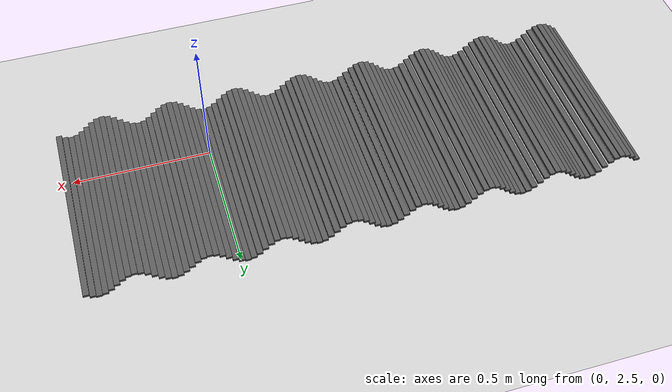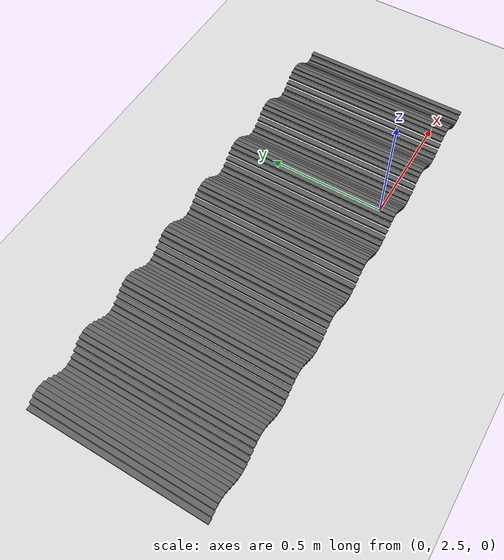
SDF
<sdf version="1.7">
 <world name="default">
  <physics name="default_physics" default="0" type="ode">
   <max_step_size>0.001</max_step_size>
   <real_time_factor>1</real_time_factor>
   <real_time_update_rate>1000</real_time_update_rate>
  </physics>
  <scene><ambient>0.4 0.4 0.4 1</ambient><background>0.7 0.7 0.7 1</background><shadows>1</shadows></scene>
  <include><uri>model://sun</uri></include>
  <include><uri>model://ground_plane</uri></include>
  <model name="wave_strip_240mm_70mm">
   <static>true</static>
   <link name="wave_link">
    <collision name="c_000">
     <pose>-1.3900 2.7500 0.1620 0 0 0</pose>
     <geometry><box><size>0.0200 0.7000 0.0080</size></box></geometry>
     <surface><friction><ode><mu>100</mu><mu2>50</mu2></ode></friction></surface>
    </collision>
    <visual name="v_000">
     <pose>-1.3900 2.7500 0.1620 0 0 0</pose>
     <geometry><box><size>0.0200 0.7000 0.0080</size></box></geometry>
     <material>
      <ambient>0.20 0.20 0.20 1</ambient>
      <diffuse>0.35 0.35 0.35 1</diffuse>
      <specular>0.02 0.02 0.02 1</specular>
     </material>
    </visual>
    <collision name="c_001">
     <pose>-1.3700 2.7500 0.1795 0 0 0</pose>
     <geometry><box><size>0.0200 0.7000 0.0080</size></box></geometry>
     <surface><friction><ode><mu>100</mu><mu2>50</mu2></ode></friction></surface>
    </collision>
    <visual name="v_001">
     <pose>-1.3700 2.7500 0.1795 0 0 0</pose>
     <geometry><box><size>0.0200 0.7000 0.0080</size></box></geometry>
     <material>
      <ambient>0.20 0.20 0.20 1</ambient>
      <diffuse>0.35 0.35 0.35 1</diffuse>
      <specular>0.02 0.02 0.02 1</specular>
     </material>
    </visual>
    <collision name="c_002">
     <pose>-1.3500 2.7500 0.1923 0 0 0</pose>
     <geometry><box><size>0.0200 0.7000 0.0080</size></box></geometry>
     <surface><friction><ode><mu>100</mu><mu2>50</mu2></ode></friction></surface>
    </collision>
    <visual name="v_002">
     <pose>-1.3500 2.7500 0.1923 0 0 0</pose>
     <geometry><box><size>0.0200 0.7000 0.0080</size></box></geometry>
     <material>
      <ambient>0.20 0.20 0.20 1</ambient>
      <diffuse>0.35 0.35 0.35 1</diffuse>
      <specular>0.02 0.02 0.02 1</specular>
     </material>
    </visual>
    <collision name="c_003">
     <pose>-1.3300 2.7500 0.1970 0 0 0</pose>
     <geometry><box><size>0.0200 0.7000 0.0080</size></box></geometry>
     <surface><friction><ode><mu>100</mu><mu2>50</mu2></ode></friction></surface>
    </collision>
    <visual name="v_003">
     <pose>-1.3300 2.7500 0.1970 0 0 0</pose>
     <geometry><box><size>0.0200 0.7000 0.0080</size></box></geometry>
     <material>
      <ambient>0.20 0.20 0.20 1</ambient>
      <diffuse>0.35 0.35 0.35 1</diffuse>
      <specular>0.02 0.02 0.02 1</specular>
     </material>
    </visual>
    <collision name="c_004">
     <pose>-1.3100 2.7500 0.1923 0 0 0</pose>
     <geometry><box><size>0.0200 0.7000 0.0080</size></box></geometry>
     <surface><friction><ode><mu>100</mu><mu2>50</mu2></ode></friction></surface>
    </collision>
    <visual name="v_004">
     <pose>-1.3100 2.7500 0.1923 0 0 0</pose>
     <geometry><box><size>0.0200 0.7000 0.0080</size></box></geometry>
     <material>
      <ambient>0.20 0.20 0.20 1</ambient>
      <diffuse>0.35 0.35 0.35 1</diffuse>
      <specular>0.02 0.02 0.02 1</specular>
     </material>
    </visual>
    <collision name="c_005">
     <pose>-1.2900 2.7500 0.1795 0 0 0</pose>
     <geometry><box><size>0.0200 0.7000 0.0080</size></box></geometry>
     <surface><friction><ode><mu>100</mu><mu2>50</mu2></ode></friction></surface>
    </collision>
    <visual name="v_005">
     <pose>-1.2900 2.7500 0.1795 0 0 0</pose>
     <geometry><box><size>0.0200 0.7000 0.0080</size></box></geometry>
     <material>
      <ambient>0.20 0.20 0.20 1</ambient>
      <diffuse>0.35 0.35 0.35 1</diffuse>
      <specular>0.02 0.02 0.02 1</specular>
     </material>
    </visual>
    <collision name="c_006">
     <pose>-1.2700 2.7500 0.1620 0 0 0</pose>
     <geometry><box><size>0.0200 0.7000 0.0080</size></box></geometry>
     <surface><friction><ode><mu>100</mu><mu2>50</mu2></ode></friction></surface>
    </collision>
    <visual name="v_006">
     <pose>-1.2700 2.7500 0.1620 0 0 0</pose>
     <geometry><box><size>0.0200 0.7000 0.0080</size></box></geometry>
     <material>
      <ambient>0.20 0.20 0.20 1</ambient>
      <diffuse>0.35 0.35 0.35 1</diffuse>
      <specular>0.02 0.02 0.02 1</specular>
     </material>
    </visual>
    <collision name="c_007">
     <pose>-1.2500 2.7500 0.1445 0 0 0</pose>
     <geometry><box><size>0.0200 0.7000 0.0080</size></box></geometry>
     <surface><friction><ode><mu>100</mu><mu2>50</mu2></ode></friction></surface>
    </collision>
    <visual name="v_007">
     <pose>-1.2500 2.7500 0.1445 0 0 0</pose>
     <geometry><box><size>0.0200 0.7000 0.0080</size></box></geometry>
     <material>
      <ambient>0.20 0.20 0.20 1</ambient>
      <diffuse>0.35 0.35 0.35 1</diffuse>
      <specular>0.02 0.02 0.02 1</specular>
     </material>
    </visual>
    <collision name="c_008">
     <pose>-1.2300 2.7500 0.1317 0 0 0</pose>
     <geometry><box><size>0.0200 0.7000 0.0080</size></box></geometry>
     <surface><friction><ode><mu>100</mu><mu2>50</mu2></ode></friction></surface>
    </collision>
    <visual name="v_008">
     <pose>-1.2300 2.7500 0.1317 0 0 0</pose>
     <geometry><box><size>0.0200 0.7000 0.0080</size></box></geometry>
     <material>
      <ambient>0.20 0.20 0.20 1</ambient>
      <diffuse>0.35 0.35 0.35 1</diffuse>
      <specular>0.02 0.02 0.02 1</specular>
     </material>
    </visual>
    <collision name="c_009">
     <pose>-1.2100 2.7500 0.1270 0 0 0</pose>
     <geometry><box><size>0.0200 0.7000 0.0080</size></box></geometry>
     <surface><friction><ode><mu>100</mu><mu2>50</mu2></ode></friction></surface>
    </collision>
    <visual name="v_009">
     <pose>-1.2100 2.7500 0.1270 0 0 0</pose>
     <geometry><box><size>0.0200 0.7000 0.0080</size></box></geometry>
     <material>
      <ambient>0.20 0.20 0.20 1</ambient>
      <diffuse>0.35 0.35 0.35 1</diffuse>
      <specular>0.02 0.02 0.02 1</specular>
     </material>
    </visual>
    <collision name="c_010">
     <pose>-1.1900 2.7500 0.1317 0 0 0</pose>
     <geometry><box><size>0.0200 0.7000 0.0080</size></box></geometry>
     <surface><friction><ode><mu>100</mu><mu2>50</mu2></ode></friction></surface>
    </collision>
    <visual name="v_010">
     <pose>-1.1900 2.7500 0.1317 0 0 0</pose>
     <geometry><box><size>0.0200 0.7000 0.0080</size></box></geometry>
     <material>
      <ambient>0.20 0.20 0.20 1</ambient>
      <diffuse>0.35 0.35 0.35 1</diffuse>
      <specular>0.02 0.02 0.02 1</specular>
     </material>
    </visual>
    <collision name="c_011">
     <pose>-1.1700 2.7500 0.1445 0 0 0</pose>
     <geometry><box><size>0.0200 0.7000 0.0080</size></box></geometry>
     <surface><friction><ode><mu>100</mu><mu2>50</mu2></ode></friction></surface>
    </collision>
    <visual name="v_011">
     <pose>-1.1700 2.7500 0.1445 0 0 0</pose>
     <geometry><box><size>0.0200 0.7000 0.0080</size></box></geometry>
     <material>
      <ambient>0.20 0.20 0.20 1</ambient>
      <diffuse>0.35 0.35 0.35 1</diffuse>
      <specular>0.02 0.02 0.02 1</specular>
     </material>
    </visual>
    <collision name="c_012">
     <pose>-1.1500 2.7500 0.1620 0 0 0</pose>
     <geometry><box><size>0.0200 0.7000 0.0080</size></box></geometry>
     <surface><friction><ode><mu>100</mu><mu2>50</mu2></ode></friction></surface>
    </collision>
    <visual name="v_012">
     <pose>-1.1500 2.7500 0.1620 0 0 0</pose>
     <geometry><box><size>0.0200 0.7000 0.0080</size></box></geometry>
     <material>
      <ambient>0.20 0.20 0.20 1</ambient>
      <diffuse>0.35 0.35 0.35 1</diffuse>
      <specular>0.02 0.02 0.02 1</specular>
     </material>
    </visual>
    <collision name="c_013">
     <pose>-1.1300 2.7500 0.1795 0 0 0</pose>
     <geometry><box><size>0.0200 0.7000 0.0080</size></box></geometry>
     <surface><friction><ode><mu>100</mu><mu2>50</mu2></ode></friction></surface>
    </collision>
    <visual name="v_013">
     <pose>-1.1300 2.7500 0.1795 0 0 0</pose>
     <geometry><box><size>0.0200 0.7000 0.0080</size></box></geometry>
     <material>
      <ambient>0.20 0.20 0.20 1</ambient>
      <diffuse>0.35 0.35 0.35 1</diffuse>
      <specular>0.02 0.02 0.02 1</specular>
     </material>
    </visual>
    <collision name="c_014">
     <pose>-1.1100 2.7500 0.1923 0 0 0</pose>
     <geometry><box><size>0.0200 0.7000 0.0080</size></box></geometry>
     <surface><friction><ode><mu>100</mu><mu2>50</mu2></ode></friction></surface>
    </collision>
    <visual name="v_014">
     <pose>-1.1100 2.7500 0.1923 0 0 0</pose>
     <geometry><box><size>0.0200 0.7000 0.0080</size></box></geometry>
     <material>
      <ambient>0.20 0.20 0.20 1</ambient>
      <diffuse>0.35 0.35 0.35 1</diffuse>
      <specular>0.02 0.02 0.02 1</specular>
     </material>
    </visual>
    <collision name="c_015">
     <pose>-1.0900 2.7500 0.1970 0 0 0</pose>
     <geometry><box><size>0.0200 0.7000 0.0080</size></box></geometry>
     <surface><friction><ode><mu>100</mu><mu2>50</mu2></ode></friction></surface>
    </collision>
    <visual name="v_015">
     <pose>-1.0900 2.7500 0.1970 0 0 0</pose>
     <geometry><box><size>0.0200 0.7000 0.0080</size></box></geometry>
     <material>
      <ambient>0.20 0.20 0.20 1</ambient>
      <diffuse>0.35 0.35 0.35 1</diffuse>
      <specular>0.02 0.02 0.02 1</specular>
     </material>
    </visual>
    <collision name="c_016">
     <pose>-1.0700 2.7500 0.1923 0 0 0</pose>
     <geometry><box><size>0.0200 0.7000 0.0080</size></box></geometry>
     <surface><friction><ode><mu>100</mu><mu2>50</mu2></ode></friction></surface>
    </collision>
    <visual name="v_016">
     <pose>-1.0700 2.7500 0.1923 0 0 0</pose>
     <geometry><box><size>0.0200 0.7000 0.0080</size></box></geometry>
     <material>
      <ambient>0.20 0.20 0.20 1</ambient>
      <diffuse>0.35 0.35 0.35 1</diffuse>
      <specular>0.02 0.02 0.02 1</specular>
     </material>
    </visual>
    <collision name="c_017">
     <pose>-1.0500 2.7500 0.1795 0 0 0</pose>
     <geometry><box><size>0.0200 0.7000 0.0080</size></box></geometry>
     <surface><friction><ode><mu>100</mu><mu2>50</mu2></ode></friction></surface>
    </collision>
    <visual name="v_017">
     <pose>-1.0500 2.7500 0.1795 0 0 0</pose>
     <geometry><box><size>0.0200 0.7000 0.0080</size></box></geometry>
     <material>
      <ambient>0.20 0.20 0.20 1</ambient>
      <diffuse>0.35 0.35 0.35 1</diffuse>
      <specular>0.02 0.02 0.02 1</specular>
     </material>
    </visual>
    <collision name="c_018">
     <pose>-1.0300 2.7500 0.1620 0 0 0</pose>
     <geometry><box><size>0.0200 0.7000 0.0080</size></box></geometry>
     <surface><friction><ode><mu>100</mu><mu2>50</mu2></ode></friction></surface>
    </collision>
    <visual name="v_018">
     <pose>-1.0300 2.7500 0.1620 0 0 0</pose>
     <geometry><box><size>0.0200 0.7000 0.0080</size></box></geometry>
     <material>
      <ambient>0.20 0.20 0.20 1</ambient>
      <diffuse>0.35 0.35 0.35 1</diffuse>
      <specular>0.02 0.02 0.02 1</specular>
     </material>
    </visual>
    <collision name="c_019">
     <pose>-1.0100 2.7500 0.1445 0 0 0</pose>
     <geometry><box><size>0.0200 0.7000 0.0080</size></box></geometry>
     <surface><friction><ode><mu>100</mu><mu2>50</mu2></ode></friction></surface>
    </collision>
    <visual name="v_019">
     <pose>-1.0100 2.7500 0.1445 0 0 0</pose>
     <geometry><box><size>0.0200 0.7000 0.0080</size></box></geometry>
     <material>
      <ambient>0.20 0.20 0.20 1</ambient>
      <diffuse>0.35 0.35 0.35 1</diffuse>
      <specular>0.02 0.02 0.02 1</specular>
     </material>
    </visual>
    <collision name="c_020">
     <pose>-0.9900 2.7500 0.1317 0 0 0</pose>
     <geometry><box><size>0.0200 0.7000 0.0080</size></box></geometry>
     <surface><friction><ode><mu>100</mu><mu2>50</mu2></ode></friction></surface>
    </collision>
    <visual name="v_020">
     <pose>-0.9900 2.7500 0.1317 0 0 0</pose>
     <geometry><box><size>0.0200 0.7000 0.0080</size></box></geometry>
     <material>
      <ambient>0.20 0.20 0.20 1</ambient>
      <diffuse>0.35 0.35 0.35 1</diffuse>
      <specular>0.02 0.02 0.02 1</specular>
     </material>
    </visual>
    <collision name="c_021">
     <pose>-0.9700 2.7500 0.1270 0 0 0</pose>
     <geometry><box><size>0.0200 0.7000 0.0080</size></box></geometry>
     <surface><friction><ode><mu>100</mu><mu2>50</mu2></ode></friction></surface>
    </collision>
    <visual name="v_021">
     <pose>-0.9700 2.7500 0.1270 0 0 0</pose>
     <geometry><box><size>0.0200 0.7000 0.0080</size></box></geometry>
     <material>
      <ambient>0.20 0.20 0.20 1</ambient>
      <diffuse>0.35 0.35 0.35 1</diffuse>
      <specular>0.02 0.02 0.02 1</specular>
     </material>
    </visual>
    <collision name="c_022">
     <pose>-0.9500 2.7500 0.1317 0 0 0</pose>
     <geometry><box><size>0.0200 0.7000 0.0080</size></box></geometry>
     <surface><friction><ode><mu>100</mu><mu2>50</mu2></ode></friction></surface>
    </collision>
    <visual name="v_022">
     <pose>-0.9500 2.7500 0.1317 0 0 0</pose>
     <geometry><box><size>0.0200 0.7000 0.0080</size></box></geometry>
     <material>
      <ambient>0.20 0.20 0.20 1</ambient>
      <diffuse>0.35 0.35 0.35 1</diffuse>
      <specular>0.02 0.02 0.02 1</specular>
     </material>
    </visual>
    <collision name="c_023">
     <pose>-0.9300 2.7500 0.1445 0 0 0</pose>
     <geometry><box><size>0.0200 0.7000 0.0080</size></box></geometry>
     <surface><friction><ode><mu>100</mu><mu2>50</mu2></ode></friction></surface>
    </collision>
    <visual name="v_023">
     <pose>-0.9300 2.7500 0.1445 0 0 0</pose>
     <geometry><box><size>0.0200 0.7000 0.0080</size></box></geometry>
     <material>
      <ambient>0.20 0.20 0.20 1</ambient>
      <diffuse>0.35 0.35 0.35 1</diffuse>
      <specular>0.02 0.02 0.02 1</specular>
     </material>
    </visual>
    <collision name="c_024">
     <pose>-0.9100 2.7500 0.1620 0 0 0</pose>
     <geometry><box><size>0.0200 0.7000 0.0080</size></box></geometry>
     <surface><friction><ode><mu>100</mu><mu2>50</mu2></ode></friction></surface>
    </collision>
    <visual name="v_024">
     <pose>-0.9100 2.7500 0.1620 0 0 0</pose>
     <geometry><box><size>0.0200 0.7000 0.0080</size></box></geometry>
     <material>
      <ambient>0.20 0.20 0.20 1</ambient>
      <diffuse>0.35 0.35 0.35 1</diffuse>
      <specular>0.02 0.02 0.02 1</specular>
     </material>
    </visual>
    <collision name="c_025">
     <pose>-0.8900 2.7500 0.1795 0 0 0</pose>
     <geometry><box><size>0.0200 0.7000 0.0080</size></box></geometry>
     <surface><friction><ode><mu>100</mu><mu2>50</mu2></ode></friction></surface>
    </collision>
    <visual name="v_025">
     <pose>-0.8900 2.7500 0.1795 0 0 0</pose>
     <geometry><box><size>0.0200 0.7000 0.0080</size></box></geometry>
     <material>
      <ambient>0.20 0.20 0.20 1</ambient>
      <diffuse>0.35 0.35 0.35 1</diffuse>
      <specular>0.02 0.02 0.02 1</specular>
     </material>
    </visual>
    <collision name="c_026">
     <pose>-0.8700 2.7500 0.1923 0 0 0</pose>
     <geometry><box><size>0.0200 0.7000 0.0080</size></box></geometry>
     <surface><friction><ode><mu>100</mu><mu2>50</mu2></ode></friction></surface>
    </collision>
    <visual name="v_026">
     <pose>-0.8700 2.7500 0.1923 0 0 0</pose>
     <geometry><box><size>0.0200 0.7000 0.0080</size></box></geometry>
     <material>
      <ambient>0.20 0.20 0.20 1</ambient>
      <diffuse>0.35 0.35 0.35 1</diffuse>
      <specular>0.02 0.02 0.02 1</specular>
     </material>
    </visual>
    <collision name="c_027">
     <pose>-0.8500 2.7500 0.1970 0 0 0</pose>
     <geometry><box><size>0.0200 0.7000 0.0080</size></box></geometry>
     <surface><friction><ode><mu>100</mu><mu2>50</mu2></ode></friction></surface>
    </collision>
    <visual name="v_027">
     <pose>-0.8500 2.7500 0.1970 0 0 0</pose>
     <geometry><box><size>0.0200 0.7000 0.0080</size></box></geometry>
     <material>
      <ambient>0.20 0.20 0.20 1</ambient>
      <diffuse>0.35 0.35 0.35 1</diffuse>
      <specular>0.02 0.02 0.02 1</specular>
     </material>
    </visual>
    <collision name="c_028">
     <pose>-0.8300 2.7500 0.1923 0 0 0</pose>
     <geometry><box><size>0.0200 0.7000 0.0080</size></box></geometry>
     <surface><friction><ode><mu>100</mu><mu2>50</mu2></ode></friction></surface>
    </collision>
    <visual name="v_028">
     <pose>-0.8300 2.7500 0.1923 0 0 0</pose>
     <geometry><box><size>0.0200 0.7000 0.0080</size></box></geometry>
     <material>
      <ambient>0.20 0.20 0.20 1</ambient>
      <diffuse>0.35 0.35 0.35 1</diffuse>
      <specular>0.02 0.02 0.02 1</specular>
     </material>
    </visual>
    <collision name="c_029">
     <pose>-0.8100 2.7500 0.1795 0 0 0</pose>
     <geometry><box><size>0.0200 0.7000 0.0080</size></box></geometry>
     <surface><friction><ode><mu>100</mu><mu2>50</mu2></ode></friction></surface>
    </collision>
    <visual name="v_029">
     <pose>-0.8100 2.7500 0.1795 0 0 0</pose>
     <geometry><box><size>0.0200 0.7000 0.0080</size></box></geometry>
     <material>
      <ambient>0.20 0.20 0.20 1</ambient>
      <diffuse>0.35 0.35 0.35 1</diffuse>
      <specular>0.02 0.02 0.02 1</specular>
     </material>
    </visual>
    <collision name="c_030">
     <pose>-0.7900 2.7500 0.1620 0 0 0</pose>
     <geometry><box><size>0.0200 0.7000 0.0080</size></box></geometry>
     <surface><friction><ode><mu>100</mu><mu2>50</mu2></ode></friction></surface>
    </collision>
    <visual name="v_030">
     <pose>-0.7900 2.7500 0.1620 0 0 0</pose>
     <geometry><box><size>0.0200 0.7000 0.0080</size></box></geometry>
     <material>
      <ambient>0.20 0.20 0.20 1</ambient>
      <diffuse>0.35 0.35 0.35 1</diffuse>
      <specular>0.02 0.02 0.02 1</specular>
     </material>
    </visual>
    <collision name="c_031">
     <pose>-0.7700 2.7500 0.1445 0 0 0</pose>
     <geometry><box><size>0.0200 0.7000 0.0080</size></box></geometry>
     <surface><friction><ode><mu>100</mu><mu2>50</mu2></ode></friction></surface>
    </collision>
    <visual name="v_031">
     <pose>-0.7700 2.7500 0.1445 0 0 0</pose>
     <geometry><box><size>0.0200 0.7000 0.0080</size></box></geometry>
     <material>
      <ambient>0.20 0.20 0.20 1</ambient>
      <diffuse>0.35 0.35 0.35 1</diffuse>
      <specular>0.02 0.02 0.02 1</specular>
     </material>
    </visual>
    <collision name="c_032">
     <pose>-0.7500 2.7500 0.1317 0 0 0</pose>
     <geometry><box><size>0.0200 0.7000 0.0080</size></box></geometry>
     <surface><friction><ode><mu>100</mu><mu2>50</mu2></ode></friction></surface>
    </collision>
    <visual name="v_032">
     <pose>-0.7500 2.7500 0.1317 0 0 0</pose>
     <geometry><box><size>0.0200 0.7000 0.0080</size></box></geometry>
     <material>
      <ambient>0.20 0.20 0.20 1</ambient>
      <diffuse>0.35 0.35 0.35 1</diffuse>
      <specular>0.02 0.02 0.02 1</specular>
     </material>
    </visual>
    <collision name="c_033">
     <pose>-0.7300 2.7500 0.1270 0 0 0</pose>
     <geometry><box><size>0.0200 0.7000 0.0080</size></box></geometry>
     <surface><friction><ode><mu>100</mu><mu2>50</mu2></ode></friction></surface>
    </collision>
    <visual name="v_033">
     <pose>-0.7300 2.7500 0.1270 0 0 0</pose>
     <geometry><box><size>0.0200 0.7000 0.0080</size></box></geometry>
     <material>
      <ambient>0.20 0.20 0.20 1</ambient>
      <diffuse>0.35 0.35 0.35 1</diffuse>
      <specular>0.02 0.02 0.02 1</specular>
     </material>
    </visual>
    <collision name="c_034">
     <pose>-0.7100 2.7500 0.1317 0 0 0</pose>
     <geometry><box><size>0.0200 0.7000 0.0080</size></box></geometry>
     <surface><friction><ode><mu>100</mu><mu2>50</mu2></ode></friction></surface>
    </collision>
    <visual name="v_034">
     <pose>-0.7100 2.7500 0.1317 0 0 0</pose>
     <geometry><box><size>0.0200 0.7000 0.0080</size></box></geometry>
     <material>
      <ambient>0.20 0.20 0.20 1</ambient>
      <diffuse>0.35 0.35 0.35 1</diffuse>
      <specular>0.02 0.02 0.02 1</specular>
     </material>
    </visual>
    <collision name="c_035">
     <pose>-0.6900 2.7500 0.1445 0 0 0</pose>
     <geometry><box><size>0.0200 0.7000 0.0080</size></box></geometry>
     <surface><friction><ode><mu>100</mu><mu2>50</mu2></ode></friction></surface>
    </collision>
    <visual name="v_035">
     <pose>-0.6900 2.7500 0.1445 0 0 0</pose>
     <geometry><box><size>0.0200 0.7000 0.0080</size></box></geometry>
     <material>
      <ambient>0.20 0.20 0.20 1</ambient>
      <diffuse>0.35 0.35 0.35 1</diffuse>
      <specular>0.02 0.02 0.02 1</specular>
     </material>
    </visual>
    <collision name="c_036">
     <pose>-0.6700 2.7500 0.1620 0 0 0</pose>
     <geometry><box><size>0.0200 0.7000 0.0080</size></box></geometry>
     <surface><friction><ode><mu>100</mu><mu2>50</mu2></ode></friction></surface>
    </collision>
    <visual name="v_036">
     <pose>-0.6700 2.7500 0.1620 0 0 0</pose>
     <geometry><box><size>0.0200 0.7000 0.0080</size></box></geometry>
     <material>
      <ambient>0.20 0.20 0.20 1</ambient>
      <diffuse>0.35 0.35 0.35 1</diffuse>
      <specular>0.02 0.02 0.02 1</specular>
     </material>
    </visual>
    <collision name="c_037">
     <pose>-0.6500 2.7500 0.1795 0 0 0</pose>
     <geometry><box><size>0.0200 0.7000 0.0080</size></box></geometry>
     <surface><friction><ode><mu>100</mu><mu2>50</mu2></ode></friction></surface>
    </collision>
    <visual name="v_037">
     <pose>-0.6500 2.7500 0.1795 0 0 0</pose>
     <geometry><box><size>0.0200 0.7000 0.0080</size></box></geometry>
     <material>
      <ambient>0.20 0.20 0.20 1</ambient>
      <diffuse>0.35 0.35 0.35 1</diffuse>
      <specular>0.02 0.02 0.02 1</specular>
     </material>
    </visual>
    <collision name="c_038">
     <pose>-0.6300 2.7500 0.1923 0 0 0</pose>
     <geometry><box><size>0.0200 0.7000 0.0080</size></box></geometry>
     <surface><friction><ode><mu>100</mu><mu2>50</mu2></ode></friction></surface>
    </collision>
    <visual name="v_038">
     <pose>-0.6300 2.7500 0.1923 0 0 0</pose>
     <geometry><box><size>0.0200 0.7000 0.0080</size></box></geometry>
     <material>
      <ambient>0.20 0.20 0.20 1</ambient>
      <diffuse>0.35 0.35 0.35 1</diffuse>
      <specular>0.02 0.02 0.02 1</specular>
     </material>
    </visual>
    <collision name="c_039">
     <pose>-0.6100 2.7500 0.1970 0 0 0</pose>
     <geometry><box><size>0.0200 0.7000 0.0080</size></box></geometry>
     <surface><friction><ode><mu>100</mu><mu2>50</mu2></ode></friction></surface>
    </collision>
    <visual name="v_039">
     <pose>-0.6100 2.7500 0.1970 0 0 0</pose>
     <geometry><box><size>0.0200 0.7000 0.0080</size></box></geometry>
     <material>
      <ambient>0.20 0.20 0.20 1</ambient>
      <diffuse>0.35 0.35 0.35 1</diffuse>
      <specular>0.02 0.02 0.02 1</specular>
     </material>
    </visual>
    <collision name="c_040">
     <pose>-0.5900 2.7500 0.1923 0 0 0</pose>
     <geometry><box><size>0.0200 0.7000 0.0080</size></box></geometry>
     <surface><friction><ode><mu>100</mu><mu2>50</mu2></ode></friction></surface>
    </collision>
    <visual name="v_040">
     <pose>-0.5900 2.7500 0.1923 0 0 0</pose>
     <geometry><box><size>0.0200 0.7000 0.0080</size></box></geometry>
     <material>
      <ambient>0.20 0.20 0.20 1</ambient>
      <diffuse>0.35 0.35 0.35 1</diffuse>
      <specular>0.02 0.02 0.02 1</specular>
     </material>
    </visual>
    <collision name="c_041">
     <pose>-0.5700 2.7500 0.1795 0 0 0</pose>
     <geometry><box><size>0.0200 0.7000 0.0080</size></box></geometry>
     <surface><friction><ode><mu>100</mu><mu2>50</mu2></ode></friction></surface>
    </collision>
    <visual name="v_041">
     <pose>-0.5700 2.7500 0.1795 0 0 0</pose>
     <geometry><box><size>0.0200 0.7000 0.0080</size></box></geometry>
     <material>
      <ambient>0.20 0.20 0.20 1</ambient>
      <diffuse>0.35 0.35 0.35 1</diffuse>
      <specular>0.02 0.02 0.02 1</specular>
     </material>
    </visual>
    <collision name="c_042">
     <pose>-0.5500 2.7500 0.1620 0 0 0</pose>
     <geometry><box><size>0.0200 0.7000 0.0080</size></box></geometry>
     <surface><friction><ode><mu>100</mu><mu2>50</mu2></ode></friction></surface>
    </collision>
    <visual name="v_042">
     <pose>-0.5500 2.7500 0.1620 0 0 0</pose>
     <geometry><box><size>0.0200 0.7000 0.0080</size></box></geometry>
     <material>
      <ambient>0.20 0.20 0.20 1</ambient>
      <diffuse>0.35 0.35 0.35 1</diffuse>
      <specular>0.02 0.02 0.02 1</specular>
     </material>
    </visual>
    <collision name="c_043">
     <pose>-0.5300 2.7500 0.1445 0 0 0</pose>
     <geometry><box><size>0.0200 0.7000 0.0080</size></box></geometry>
     <surface><friction><ode><mu>100</mu><mu2>50</mu2></ode></friction></surface>
    </collision>
    <visual name="v_043">
     <pose>-0.5300 2.7500 0.1445 0 0 0</pose>
     <geometry><box><size>0.0200 0.7000 0.0080</size></box></geometry>
     <material>
      <ambient>0.20 0.20 0.20 1</ambient>
      <diffuse>0.35 0.35 0.35 1</diffuse>
      <specular>0.02 0.02 0.02 1</specular>
     </material>
    </visual>
    <collision name="c_044">
     <pose>-0.5100 2.7500 0.1317 0 0 0</pose>
     <geometry><box><size>0.0200 0.7000 0.0080</size></box></geometry>
     <surface><friction><ode><mu>100</mu><mu2>50</mu2></ode></friction></surface>
    </collision>
    <visual name="v_044">
     <pose>-0.5100 2.7500 0.1317 0 0 0</pose>
     <geometry><box><size>0.0200 0.7000 0.0080</size></box></geometry>
     <material>
      <ambient>0.20 0.20 0.20 1</ambient>
      <diffuse>0.35 0.35 0.35 1</diffuse>
      <specular>0.02 0.02 0.02 1</specular>
     </material>
    </visual>
    <collision name="c_045">
     <pose>-0.4900 2.7500 0.1270 0 0 0</pose>
     <geometry><box><size>0.0200 0.7000 0.0080</size></box></geometry>
     <surface><friction><ode><mu>100</mu><mu2>50</mu2></ode></friction></surface>
    </collision>
    <visual name="v_045">
     <pose>-0.4900 2.7500 0.1270 0 0 0</pose>
     <geometry><box><size>0.0200 0.7000 0.0080</size></box></geometry>
     <material>
      <ambient>0.20 0.20 0.20 1</ambient>
      <diffuse>0.35 0.35 0.35 1</diffuse>
      <specular>0.02 0.02 0.02 1</specular>
     </material>
    </visual>
    <collision name="c_046">
     <pose>-0.4700 2.7500 0.1317 0 0 0</pose>
     <geometry><box><size>0.0200 0.7000 0.0080</size></box></geometry>
     <surface><friction><ode><mu>100</mu><mu2>50</mu2></ode></friction></surface>
    </collision>
    <visual name="v_046">
     <pose>-0.4700 2.7500 0.1317 0 0 0</pose>
     <geometry><box><size>0.0200 0.7000 0.0080</size></box></geometry>
     <material>
      <ambient>0.20 0.20 0.20 1</ambient>
      <diffuse>0.35 0.35 0.35 1</diffuse>
      <specular>0.02 0.02 0.02 1</specular>
     </material>
    </visual>
    <collision name="c_047">
     <pose>-0.4500 2.7500 0.1445 0 0 0</pose>
     <geometry><box><size>0.0200 0.7000 0.0080</size></box></geometry>
     <surface><friction><ode><mu>100</mu><mu2>50</mu2></ode></friction></surface>
    </collision>
    <visual name="v_047">
     <pose>-0.4500 2.7500 0.1445 0 0 0</pose>
     <geometry><box><size>0.0200 0.7000 0.0080</size></box></geometry>
     <material>
      <ambient>0.20 0.20 0.20 1</ambient>
      <diffuse>0.35 0.35 0.35 1</diffuse>
      <specular>0.02 0.02 0.02 1</specular>
     </material>
    </visual>
    <collision name="c_048">
     <pose>-0.4300 2.7500 0.1620 0 0 0</pose>
     <geometry><box><size>0.0200 0.7000 0.0080</size></box></geometry>
     <surface><friction><ode><mu>100</mu><mu2>50</mu2></ode></friction></surface>
    </collision>
    <visual name="v_048">
     <pose>-0.4300 2.7500 0.1620 0 0 0</pose>
     <geometry><box><size>0.0200 0.7000 0.0080</size></box></geometry>
     <material>
      <ambient>0.20 0.20 0.20 1</ambient>
      <diffuse>0.35 0.35 0.35 1</diffuse>
      <specular>0.02 0.02 0.02 1</specular>
     </material>
    </visual>
    <collision name="c_049">
     <pose>-0.4100 2.7500 0.1795 0 0 0</pose>
     <geometry><box><size>0.0200 0.7000 0.0080</size></box></geometry>
     <surface><friction><ode><mu>100</mu><mu2>50</mu2></ode></friction></surface>
    </collision>
    <visual name="v_049">
     <pose>-0.4100 2.7500 0.1795 0 0 0</pose>
     <geometry><box><size>0.0200 0.7000 0.0080</size></box></geometry>
     <material>
      <ambient>0.20 0.20 0.20 1</ambient>
      <diffuse>0.35 0.35 0.35 1</diffuse>
      <specular>0.02 0.02 0.02 1</specular>
     </material>
    </visual>
    <collision name="c_050">
     <pose>-0.3900 2.7500 0.1923 0 0 0</pose>
     <geometry><box><size>0.0200 0.7000 0.0080</size></box></geometry>
     <surface><friction><ode><mu>100</mu><mu2>50</mu2></ode></friction></surface>
    </collision>
    <visual name="v_050">
     <pose>-0.3900 2.7500 0.1923 0 0 0</pose>
     <geometry><box><size>0.0200 0.7000 0.0080</size></box></geometry>
     <material>
      <ambient>0.20 0.20 0.20 1</ambient>
      <diffuse>0.35 0.35 0.35 1</diffuse>
      <specular>0.02 0.02 0.02 1</specular>
     </material>
    </visual>
    <collision name="c_051">
     <pose>-0.3700 2.7500 0.1970 0 0 0</pose>
     <geometry><box><size>0.0200 0.7000 0.0080</size></box></geometry>
     <surface><friction><ode><mu>100</mu><mu2>50</mu2></ode></friction></surface>
    </collision>
    <visual name="v_051">
     <pose>-0.3700 2.7500 0.1970 0 0 0</pose>
     <geometry><box><size>0.0200 0.7000 0.0080</size></box></geometry>
     <material>
      <ambient>0.20 0.20 0.20 1</ambient>
      <diffuse>0.35 0.35 0.35 1</diffuse>
      <specular>0.02 0.02 0.02 1</specular>
     </material>
    </visual>
    <collision name="c_052">
     <pose>-0.3500 2.7500 0.1923 0 0 0</pose>
     <geometry><box><size>0.0200 0.7000 0.0080</size></box></geometry>
     <surface><friction><ode><mu>100</mu><mu2>50</mu2></ode></friction></surface>
    </collision>
    <visual name="v_052">
     <pose>-0.3500 2.7500 0.1923 0 0 0</pose>
     <geometry><box><size>0.0200 0.7000 0.0080</size></box></geometry>
     <material>
      <ambient>0.20 0.20 0.20 1</ambient>
      <diffuse>0.35 0.35 0.35 1</diffuse>
      <specular>0.02 0.02 0.02 1</specular>
     </material>
    </visual>
    <collision name="c_053">
     <pose>-0.3300 2.7500 0.1795 0 0 0</pose>
     <geometry><box><size>0.0200 0.7000 0.0080</size></box></geometry>
     <surface><friction><ode><mu>100</mu><mu2>50</mu2></ode></friction></surface>
    </collision>
    <visual name="v_053">
     <pose>-0.3300 2.7500 0.1795 0 0 0</pose>
     <geometry><box><size>0.0200 0.7000 0.0080</size></box></geometry>
     <material>
      <ambient>0.20 0.20 0.20 1</ambient>
      <diffuse>0.35 0.35 0.35 1</diffuse>
      <specular>0.02 0.02 0.02 1</specular>
     </material>
    </visual>
    <collision name="c_054">
     <pose>-0.3100 2.7500 0.1620 0 0 0</pose>
     <geometry><box><size>0.0200 0.7000 0.0080</size></box></geometry>
     <surface><friction><ode><mu>100</mu><mu2>50</mu2></ode></friction></surface>
    </collision>
    <visual name="v_054">
     <pose>-0.3100 2.7500 0.1620 0 0 0</pose>
     <geometry><box><size>0.0200 0.7000 0.0080</size></box></geometry>
     <material>
      <ambient>0.20 0.20 0.20 1</ambient>
      <diffuse>0.35 0.35 0.35 1</diffuse>
      <specular>0.02 0.02 0.02 1</specular>
     </material>
    </visual>
    <collision name="c_055">
     <pose>-0.2900 2.7500 0.1445 0 0 0</pose>
     <geometry><box><size>0.0200 0.7000 0.0080</size></box></geometry>
     <surface><friction><ode><mu>100</mu><mu2>50</mu2></ode></friction></surface>
    </collision>
    <visual name="v_055">
     <pose>-0.2900 2.7500 0.1445 0 0 0</pose>
     <geometry><box><size>0.0200 0.7000 0.0080</size></box></geometry>
     <material>
      <ambient>0.20 0.20 0.20 1</ambient>
      <diffuse>0.35 0.35 0.35 1</diffuse>
      <specular>0.02 0.02 0.02 1</specular>
     </material>
    </visual>
    <collision name="c_056">
     <pose>-0.2700 2.7500 0.1317 0 0 0</pose>
     <geometry><box><size>0.0200 0.7000 0.0080</size></box></geometry>
     <surface><friction><ode><mu>100</mu><mu2>50</mu2></ode></friction></surface>
    </collision>
    <visual name="v_056">
     <pose>-0.2700 2.7500 0.1317 0 0 0</pose>
     <geometry><box><size>0.0200 0.7000 0.0080</size></box></geometry>
     <material>
      <ambient>0.20 0.20 0.20 1</ambient>
      <diffuse>0.35 0.35 0.35 1</diffuse>
      <specular>0.02 0.02 0.02 1</specular>
     </material>
    </visual>
    <collision name="c_057">
     <pose>-0.2500 2.7500 0.1270 0 0 0</pose>
     <geometry><box><size>0.0200 0.7000 0.0080</size></box></geometry>
     <surface><friction><ode><mu>100</mu><mu2>50</mu2></ode></friction></surface>
    </collision>
    <visual name="v_057">
     <pose>-0.2500 2.7500 0.1270 0 0 0</pose>
     <geometry><box><size>0.0200 0.7000 0.0080</size></box></geometry>
     <material>
      <ambient>0.20 0.20 0.20 1</ambient>
      <diffuse>0.35 0.35 0.35 1</diffuse>
      <specular>0.02 0.02 0.02 1</specular>
     </material>
    </visual>
    <collision name="c_058">
     <pose>-0.2300 2.7500 0.1317 0 0 0</pose>
     <geometry><box><size>0.0200 0.7000 0.0080</size></box></geometry>
     <surface><friction><ode><mu>100</mu><mu2>50</mu2></ode></friction></surface>
    </collision>
    <visual name="v_058">
     <pose>-0.2300 2.7500 0.1317 0 0 0</pose>
     <geometry><box><size>0.0200 0.7000 0.0080</size></box></geometry>
     <material>
      <ambient>0.20 0.20 0.20 1</ambient>
      <diffuse>0.35 0.35 0.35 1</diffuse>
      <specular>0.02 0.02 0.02 1</specular>
     </material>
    </visual>
    <collision name="c_059">
     <pose>-0.2100 2.7500 0.1445 0 0 0</pose>
     <geometry><box><size>0.0200 0.7000 0.0080</size></box></geometry>
     <surface><friction><ode><mu>100</mu><mu2>50</mu2></ode></friction></surface>
    </collision>
    <visual name="v_059">
     <pose>-0.2100 2.7500 0.1445 0 0 0</pose>
     <geometry><box><size>0.0200 0.7000 0.0080</size></box></geometry>
     <material>
      <ambient>0.20 0.20 0.20 1</ambient>
      <diffuse>0.35 0.35 0.35 1</diffuse>
      <specular>0.02 0.02 0.02 1</specular>
     </material>
    </visual>
    <collision name="c_060">
     <pose>-0.1900 2.7500 0.1620 0 0 0</pose>
     <geometry><box><size>0.0200 0.7000 0.0080</size></box></geometry>
     <surface><friction><ode><mu>100</mu><mu2>50</mu2></ode></friction></surface>
    </collision>
    <visual name="v_060">
     <pose>-0.1900 2.7500 0.1620 0 0 0</pose>
     <geometry><box><size>0.0200 0.7000 0.0080</size></box></geometry>
     <material>
      <ambient>0.20 0.20 0.20 1</ambient>
      <diffuse>0.35 0.35 0.35 1</diffuse>
      <specular>0.02 0.02 0.02 1</specular>
     </material>
    </visual>
    <collision name="c_061">
     <pose>-0.1700 2.7500 0.1795 0 0 0</pose>
     <geometry><box><size>0.0200 0.7000 0.0080</size></box></geometry>
     <surface><friction><ode><mu>100</mu><mu2>50</mu2></ode></friction></surface>
    </collision>
    <visual name="v_061">
     <pose>-0.1700 2.7500 0.1795 0 0 0</pose>
     <geometry><box><size>0.0200 0.7000 0.0080</size></box></geometry>
     <material>
      <ambient>0.20 0.20 0.20 1</ambient>
      <diffuse>0.35 0.35 0.35 1</diffuse>
      <specular>0.02 0.02 0.02 1</specular>
     </material>
    </visual>
    <collision name="c_062">
     <pose>-0.1500 2.7500 0.1923 0 0 0</pose>
     <geometry><box><size>0.0200 0.7000 0.0080</size></box></geometry>
     <surface><friction><ode><mu>100</mu><mu2>50</mu2></ode></friction></surface>
    </collision>
    <visual name="v_062">
     <pose>-0.1500 2.7500 0.1923 0 0 0</pose>
     <geometry><box><size>0.0200 0.7000 0.0080</size></box></geometry>
     <material>
      <ambient>0.20 0.20 0.20 1</ambient>
      <diffuse>0.35 0.35 0.35 1</diffuse>
      <specular>0.02 0.02 0.02 1</specular>
     </material>
    </visual>
    <collision name="c_063">
     <pose>-0.1300 2.7500 0.1970 0 0 0</pose>
     <geometry><box><size>0.0200 0.7000 0.0080</size></box></geometry>
     <surface><friction><ode><mu>100</mu><mu2>50</mu2></ode></friction></surface>
    </collision>
    <visual name="v_063">
     <pose>-0.1300 2.7500 0.1970 0 0 0</pose>
     <geometry><box><size>0.0200 0.7000 0.0080</size></box></geometry>
     <material>
      <ambient>0.20 0.20 0.20 1</ambient>
      <diffuse>0.35 0.35 0.35 1</diffuse>
      <specular>0.02 0.02 0.02 1</specular>
     </material>
    </visual>
    <collision name="c_064">
     <pose>-0.1100 2.7500 0.1923 0 0 0</pose>
     <geometry><box><size>0.0200 0.7000 0.0080</size></box></geometry>
     <surface><friction><ode><mu>100</mu><mu2>50</mu2></ode></friction></surface>
    </collision>
    <visual name="v_064">
     <pose>-0.1100 2.7500 0.1923 0 0 0</pose>
     <geometry><box><size>0.0200 0.7000 0.0080</size></box></geometry>
     <material>
      <ambient>0.20 0.20 0.20 1</ambient>
      <diffuse>0.35 0.35 0.35 1</diffuse>
      <specular>0.02 0.02 0.02 1</specular>
     </material>
    </visual>
    <collision name="c_065">
     <pose>-0.0900 2.7500 0.1795 0 0 0</pose>
     <geometry><box><size>0.0200 0.7000 0.0080</size></box></geometry>
     <surface><friction><ode><mu>100</mu><mu2>50</mu2></ode></friction></surface>
    </collision>
    <visual name="v_065">
     <pose>-0.0900 2.7500 0.1795 0 0 0</pose>
     <geometry><box><size>0.0200 0.7000 0.0080</size></box></geometry>
     <material>
      <ambient>0.20 0.20 0.20 1</ambient>
      <diffuse>0.35 0.35 0.35 1</diffuse>
      <specular>0.02 0.02 0.02 1</specular>
     </material>
    </visual>
    <collision name="c_066">
     <pose>-0.0700 2.7500 0.1620 0 0 0</pose>
     <geometry><box><size>0.0200 0.7000 0.0080</size></box></geometry>
     <surface><friction><ode><mu>100</mu><mu2>50</mu2></ode></friction></surface>
    </collision>
    <visual name="v_066">
     <pose>-0.0700 2.7500 0.1620 0 0 0</pose>
     <geometry><box><size>0.0200 0.7000 0.0080</size></box></geometry>
     <material>
      <ambient>0.20 0.20 0.20 1</ambient>
      <diffuse>0.35 0.35 0.35 1</diffuse>
      <specular>0.02 0.02 0.02 1</specular>
     </material>
    </visual>
    <collision name="c_067">
     <pose>-0.0500 2.7500 0.1445 0 0 0</pose>
     <geometry><box><size>0.0200 0.7000 0.0080</size></box></geometry>
     <surface><friction><ode><mu>100</mu><mu2>50</mu2></ode></friction></surface>
    </collision>
    <visual name="v_067">
     <pose>-0.0500 2.7500 0.1445 0 0 0</pose>
     <geometry><box><size>0.0200 0.7000 0.0080</size></box></geometry>
     <material>
      <ambient>0.20 0.20 0.20 1</ambient>
      <diffuse>0.35 0.35 0.35 1</diffuse>
      <specular>0.02 0.02 0.02 1</specular>
     </material>
    </visual>
    <collision name="c_068">
     <pose>-0.0300 2.7500 0.1317 0 0 0</pose>
     <geometry><box><size>0.0200 0.7000 0.0080</size></box></geometry>
     <surface><friction><ode><mu>100</mu><mu2>50</mu2></ode></friction></surface>
    </collision>
    <visual name="v_068">
     <pose>-0.0300 2.7500 0.1317 0 0 0</pose>
     <geometry><box><size>0.0200 0.7000 0.0080</size></box></geometry>
     <material>
      <ambient>0.20 0.20 0.20 1</ambient>
      <diffuse>0.35 0.35 0.35 1</diffuse>
      <specular>0.02 0.02 0.02 1</specular>
     </material>
    </visual>
    <collision name="c_069">
     <pose>-0.0100 2.7500 0.1270 0 0 0</pose>
     <geometry><box><size>0.0200 0.7000 0.0080</size></box></geometry>
     <surface><friction><ode><mu>100</mu><mu2>50</mu2></ode></friction></surface>
    </collision>
    <visual name="v_069">
     <pose>-0.0100 2.7500 0.1270 0 0 0</pose>
     <geometry><box><size>0.0200 0.7000 0.0080</size></box></geometry>
     <material>
      <ambient>0.20 0.20 0.20 1</ambient>
      <diffuse>0.35 0.35 0.35 1</diffuse>
      <specular>0.02 0.02 0.02 1</specular>
     </material>
    </visual>
    <collision name="c_070">
     <pose>0.0100 2.7500 0.1317 0 0 0</pose>
     <geometry><box><size>0.0200 0.7000 0.0080</size></box></geometry>
     <surface><friction><ode><mu>100</mu><mu2>50</mu2></ode></friction></surface>
    </collision>
    <visual name="v_070">
     <pose>0.0100 2.7500 0.1317 0 0 0</pose>
     <geometry><box><size>0.0200 0.7000 0.0080</size></box></geometry>
     <material>
      <ambient>0.20 0.20 0.20 1</ambient>
      <diffuse>0.35 0.35 0.35 1</diffuse>
      <specular>0.02 0.02 0.02 1</specular>
     </material>
    </visual>
    <collision name="c_071">
     <pose>0.0300 2.7500 0.1445 0 0 0</pose>
     <geometry><box><size>0.0200 0.7000 0.0080</size></box></geometry>
     <surface><friction><ode><mu>100</mu><mu2>50</mu2></ode></friction></surface>
    </collision>
    <visual name="v_071">
     <pose>0.0300 2.7500 0.1445 0 0 0</pose>
     <geometry><box><size>0.0200 0.7000 0.0080</size></box></geometry>
     <material>
      <ambient>0.20 0.20 0.20 1</ambient>
      <diffuse>0.35 0.35 0.35 1</diffuse>
      <specular>0.02 0.02 0.02 1</specular>
     </material>
    </visual>
    <collision name="c_072">
     <pose>0.0500 2.7500 0.1620 0 0 0</pose>
     <geometry><box><size>0.0200 0.7000 0.0080</size></box></geometry>
     <surface><friction><ode><mu>100</mu><mu2>50</mu2></ode></friction></surface>
    </collision>
    <visual name="v_072">
     <pose>0.0500 2.7500 0.1620 0 0 0</pose>
     <geometry><box><size>0.0200 0.7000 0.0080</size></box></geometry>
     <material>
      <ambient>0.20 0.20 0.20 1</ambient>
      <diffuse>0.35 0.35 0.35 1</diffuse>
      <specular>0.02 0.02 0.02 1</specular>
     </material>
    </visual>
    <collision name="c_073">
     <pose>0.0700 2.7500 0.1795 0 0 0</pose>
     <geometry><box><size>0.0200 0.7000 0.0080</size></box></geometry>
     <surface><friction><ode><mu>100</mu><mu2>50</mu2></ode></friction></surface>
    </collision>
    <visual name="v_073">
     <pose>0.0700 2.7500 0.1795 0 0 0</pose>
     <geometry><box><size>0.0200 0.7000 0.0080</size></box></geometry>
     <material>
      <ambient>0.20 0.20 0.20 1</ambient>
      <diffuse>0.35 0.35 0.35 1</diffuse>
      <specular>0.02 0.02 0.02 1</specular>
     </material>
    </visual>
    <collision name="c_074">
     <pose>0.0900 2.7500 0.1923 0 0 0</pose>
     <geometry><box><size>0.0200 0.7000 0.0080</size></box></geometry>
     <surface><friction><ode><mu>100</mu><mu2>50</mu2></ode></friction></surface>
    </collision>
    <visual name="v_074">
     <pose>0.0900 2.7500 0.1923 0 0 0</pose>
     <geometry><box><size>0.0200 0.7000 0.0080</size></box></geometry>
     <material>
      <ambient>0.20 0.20 0.20 1</ambient>
      <diffuse>0.35 0.35 0.35 1</diffuse>
      <specular>0.02 0.02 0.02 1</specular>
     </material>
    </visual>
    <collision name="c_075">
     <pose>0.1100 2.7500 0.1970 0 0 0</pose>
     <geometry><box><size>0.0200 0.7000 0.0080</size></box></geometry>
     <surface><friction><ode><mu>100</mu><mu2>50</mu2></ode></friction></surface>
    </collision>
    <visual name="v_075">
     <pose>0.1100 2.7500 0.1970 0 0 0</pose>
     <geometry><box><size>0.0200 0.7000 0.0080</size></box></geometry>
     <material>
      <ambient>0.20 0.20 0.20 1</ambient>
      <diffuse>0.35 0.35 0.35 1</diffuse>
      <specular>0.02 0.02 0.02 1</specular>
     </material>
    </visual>
    <collision name="c_076">
     <pose>0.1300 2.7500 0.1923 0 0 0</pose>
     <geometry><box><size>0.0200 0.7000 0.0080</size></box></geometry>
     <surface><friction><ode><mu>100</mu><mu2>50</mu2></ode></friction></surface>
    </collision>
    <visual name="v_076">
     <pose>0.1300 2.7500 0.1923 0 0 0</pose>
     <geometry><box><size>0.0200 0.7000 0.0080</size></box></geometry>
     <material>
      <ambient>0.20 0.20 0.20 1</ambient>
      <diffuse>0.35 0.35 0.35 1</diffuse>
      <specular>0.02 0.02 0.02 1</specular>
     </material>
    </visual>
    <collision name="c_077">
     <pose>0.1500 2.7500 0.1795 0 0 0</pose>
     <geometry><box><size>0.0200 0.7000 0.0080</size></box></geometry>
     <surface><friction><ode><mu>100</mu><mu2>50</mu2></ode></friction></surface>
    </collision>
    <visual name="v_077">
     <pose>0.1500 2.7500 0.1795 0 0 0</pose>
     <geometry><box><size>0.0200 0.7000 0.0080</size></box></geometry>
     <material>
      <ambient>0.20 0.20 0.20 1</ambient>
      <diffuse>0.35 0.35 0.35 1</diffuse>
      <specular>0.02 0.02 0.02 1</specular>
     </material>
    </visual>
    <collision name="c_078">
     <pose>0.1700 2.7500 0.1620 0 0 0</pose>
     <geometry><box><size>0.0200 0.7000 0.0080</size></box></geometry>
     <surface><friction><ode><mu>100</mu><mu2>50</mu2></ode></friction></surface>
    </collision>
    <visual name="v_078">
     <pose>0.1700 2.7500 0.1620 0 0 0</pose>
     <geometry><box><size>0.0200 0.7000 0.0080</size></box></geometry>
     <material>
      <ambient>0.20 0.20 0.20 1</ambient>
      <diffuse>0.35 0.35 0.35 1</diffuse>
      <specular>0.02 0.02 0.02 1</specular>
     </material>
    </visual>
    <collision name="c_079">
     <pose>0.1900 2.7500 0.1445 0 0 0</pose>
     <geometry><box><size>0.0200 0.7000 0.0080</size></box></geometry>
     <surface><friction><ode><mu>100</mu><mu2>50</mu2></ode></friction></surface>
    </collision>
    <visual name="v_079">
     <pose>0.1900 2.7500 0.1445 0 0 0</pose>
     <geometry><box><size>0.0200 0.7000 0.0080</size></box></geometry>
     <material>
      <ambient>0.20 0.20 0.20 1</ambient>
      <diffuse>0.35 0.35 0.35 1</diffuse>
      <specular>0.02 0.02 0.02 1</specular>
     </material>
    </visual>
    <collision name="c_080">
     <pose>0.2100 2.7500 0.1317 0 0 0</pose>
     <geometry><box><size>0.0200 0.7000 0.0080</size></box></geometry>
     <surface><friction><ode><mu>100</mu><mu2>50</mu2></ode></friction></surface>
    </collision>
    <visual name="v_080">
     <pose>0.2100 2.7500 0.1317 0 0 0</pose>
     <geometry><box><size>0.0200 0.7000 0.0080</size></box></geometry>
     <material>
      <ambient>0.20 0.20 0.20 1</ambient>
      <diffuse>0.35 0.35 0.35 1</diffuse>
      <specular>0.02 0.02 0.02 1</specular>
     </material>
    </visual>
    <collision name="c_081">
     <pose>0.2300 2.7500 0.1270 0 0 0</pose>
     <geometry><box><size>0.0200 0.7000 0.0080</size></box></geometry>
     <surface><friction><ode><mu>100</mu><mu2>50</mu2></ode></friction></surface>
    </collision>
    <visual name="v_081">
     <pose>0.2300 2.7500 0.1270 0 0 0</pose>
     <geometry><box><size>0.0200 0.7000 0.0080</size></box></geometry>
     <material>
      <ambient>0.20 0.20 0.20 1</ambient>
      <diffuse>0.35 0.35 0.35 1</diffuse>
      <specular>0.02 0.02 0.02 1</specular>
     </material>
    </visual>
    <collision name="c_082">
     <pose>0.2500 2.7500 0.1317 0 0 0</pose>
     <geometry><box><size>0.0200 0.7000 0.0080</size></box></geometry>
     <surface><friction><ode><mu>100</mu><mu2>50</mu2></ode></friction></surface>
    </collision>
    <visual name="v_082">
     <pose>0.2500 2.7500 0.1317 0 0 0</pose>
     <geometry><box><size>0.0200 0.7000 0.0080</size></box></geometry>
     <material>
      <ambient>0.20 0.20 0.20 1</ambient>
      <diffuse>0.35 0.35 0.35 1</diffuse>
      <specular>0.02 0.02 0.02 1</specular>
     </material>
    </visual>
    <collision name="c_083">
     <pose>0.2700 2.7500 0.1445 0 0 0</pose>
     <geometry><box><size>0.0200 0.7000 0.0080</size></box></geometry>
     <surface><friction><ode><mu>100</mu><mu2>50</mu2></ode></friction></surface>
    </collision>
    <visual name="v_083">
     <pose>0.2700 2.7500 0.1445 0 0 0</pose>
     <geometry><box><size>0.0200 0.7000 0.0080</size></box></geometry>
     <material>
      <ambient>0.20 0.20 0.20 1</ambient>
      <diffuse>0.35 0.35 0.35 1</diffuse>
      <specular>0.02 0.02 0.02 1</specular>
     </material>
    </visual>
    <collision name="c_084">
     <pose>0.2900 2.7500 0.1620 0 0 0</pose>
     <geometry><box><size>0.0200 0.7000 0.0080</size></box></geometry>
     <surface><friction><ode><mu>100</mu><mu2>50</mu2></ode></friction></surface>
    </collision>
    <visual name="v_084">
     <pose>0.2900 2.7500 0.1620 0 0 0</pose>
     <geometry><box><size>0.0200 0.7000 0.0080</size></box></geometry>
     <material>
      <ambient>0.20 0.20 0.20 1</ambient>
      <diffuse>0.35 0.35 0.35 1</diffuse>
      <specular>0.02 0.02 0.02 1</specular>
     </material>
    </visual>
    <collision name="c_085">
     <pose>0.3100 2.7500 0.1795 0 0 0</pose>
     <geometry><box><size>0.0200 0.7000 0.0080</size></box></geometry>
     <surface><friction><ode><mu>100</mu><mu2>50</mu2></ode></friction></surface>
    </collision>
    <visual name="v_085">
     <pose>0.3100 2.7500 0.1795 0 0 0</pose>
     <geometry><box><size>0.0200 0.7000 0.0080</size></box></geometry>
     <material>
      <ambient>0.20 0.20 0.20 1</ambient>
      <diffuse>0.35 0.35 0.35 1</diffuse>
      <specular>0.02 0.02 0.02 1</specular>
     </material>
    </visual>
    <collision name="c_086">
     <pose>0.3300 2.7500 0.1923 0 0 0</pose>
     <geometry><box><size>0.0200 0.7000 0.0080</size></box></geometry>
     <surface><friction><ode><mu>100</mu><mu2>50</mu2></ode></friction></surface>
    </collision>
    <visual name="v_086">
     <pose>0.3300 2.7500 0.1923 0 0 0</pose>
     <geometry><box><size>0.0200 0.7000 0.0080</size></box></geometry>
     <material>
      <ambient>0.20 0.20 0.20 1</ambient>
      <diffuse>0.35 0.35 0.35 1</diffuse>
      <specular>0.02 0.02 0.02 1</specular>
     </material>
    </visual>
    <collision name="c_087">
     <pose>0.3500 2.7500 0.1970 0 0 0</pose>
     <geometry><box><size>0.0200 0.7000 0.0080</size></box></geometry>
     <surface><friction><ode><mu>100</mu><mu2>50</mu2></ode></friction></surface>
    </collision>
    <visual name="v_087">
     <pose>0.3500 2.7500 0.1970 0 0 0</pose>
     <geometry><box><size>0.0200 0.7000 0.0080</size></box></geometry>
     <material>
      <ambient>0.20 0.20 0.20 1</ambient>
      <diffuse>0.35 0.35 0.35 1</diffuse>
      <specular>0.02 0.02 0.02 1</specular>
     </material>
    </visual>
    <collision name="c_088">
     <pose>0.3700 2.7500 0.1923 0 0 0</pose>
     <geometry><box><size>0.0200 0.7000 0.0080</size></box></geometry>
     <surface><friction><ode><mu>100</mu><mu2>50</mu2></ode></friction></surface>
    </collision>
    <visual name="v_088">
     <pose>0.3700 2.7500 0.1923 0 0 0</pose>
     <geometry><box><size>0.0200 0.7000 0.0080</size></box></geometry>
     <material>
      <ambient>0.20 0.20 0.20 1</ambient>
      <diffuse>0.35 0.35 0.35 1</diffuse>
      <specular>0.02 0.02 0.02 1</specular>
     </material>
    </visual>
    <collision name="c_089">
     <pose>0.3900 2.7500 0.1795 0 0 0</pose>
     <geometry><box><size>0.0200 0.7000 0.0080</size></box></geometry>
     <surface><friction><ode><mu>100</mu><mu2>50</mu2></ode></friction></surface>
    </collision>
    <visual name="v_089">
     <pose>0.3900 2.7500 0.1795 0 0 0</pose>
     <geometry><box><size>0.0200 0.7000 0.0080</size></box></geometry>
     <material>
      <ambient>0.20 0.20 0.20 1</ambient>
      <diffuse>0.35 0.35 0.35 1</diffuse>
      <specular>0.02 0.02 0.02 1</specular>
     </material>
    </visual>
    <collision name="c_090">
     <pose>0.4100 2.7500 0.1620 0 0 0</pose>
     <geometry><box><size>0.0200 0.7000 0.0080</size></box></geometry>
     <surface><friction><ode><mu>100</mu><mu2>50</mu2></ode></friction></surface>
    </collision>
    <visual name="v_090">
     <pose>0.4100 2.7500 0.1620 0 0 0</pose>
     <geometry><box><size>0.0200 0.7000 0.0080</size></box></geometry>
     <material>
      <ambient>0.20 0.20 0.20 1</ambient>
      <diffuse>0.35 0.35 0.35 1</diffuse>
      <specular>0.02 0.02 0.02 1</specular>
     </material>
    </visual>
    <collision name="c_091">
     <pose>0.4300 2.7500 0.1445 0 0 0</pose>
     <geometry><box><size>0.0200 0.7000 0.0080</size></box></geometry>
     <surface><friction><ode><mu>100</mu><mu2>50</mu2></ode></friction></surface>
    </collision>
    <visual name="v_091">
     <pose>0.4300 2.7500 0.1445 0 0 0</pose>
     <geometry><box><size>0.0200 0.7000 0.0080</size></box></geometry>
     <material>
      <ambient>0.20 0.20 0.20 1</ambient>
      <diffuse>0.35 0.35 0.35 1</diffuse>
      <specular>0.02 0.02 0.02 1</specular>
     </material>
    </visual>
    <collision name="c_092">
     <pose>0.4500 2.7500 0.1317 0 0 0</pose>
     <geometry><box><size>0.0200 0.7000 0.0080</size></box></geometry>
     <surface><friction><ode><mu>100</mu><mu2>50</mu2></ode></friction></surface>
    </collision>
    <visual name="v_092">
     <pose>0.4500 2.7500 0.1317 0 0 0</pose>
     <geometry><box><size>0.0200 0.7000 0.0080</size></box></geometry>
     <material>
      <ambient>0.20 0.20 0.20 1</ambient>
      <diffuse>0.35 0.35 0.35 1</diffuse>
      <specular>0.02 0.02 0.02 1</specular>
     </material>
    </visual>
    <collision name="c_093">
     <pose>0.4700 2.7500 0.1270 0 0 0</pose>
     <geometry><box><size>0.0200 0.7000 0.0080</size></box></geometry>
     <surface><friction><ode><mu>100</mu><mu2>50</mu2></ode></friction></surface>
    </collision>
    <visual name="v_093">
     <pose>0.4700 2.7500 0.1270 0 0 0</pose>
     <geometry><box><size>0.0200 0.7000 0.0080</size></box></geometry>
     <material>
      <ambient>0.20 0.20 0.20 1</ambient>
      <diffuse>0.35 0.35 0.35 1</diffuse>
      <specular>0.02 0.02 0.02 1</specular>
     </material>
    </visual>
    <collision name="c_094">
     <pose>0.4900 2.7500 0.1317 0 0 0</pose>
     <geometry><box><size>0.0200 0.7000 0.0080</size></box></geometry>
     <surface><friction><ode><mu>100</mu><mu2>50</mu2></ode></friction></surface>
    </collision>
    <visual name="v_094">
     <pose>0.4900 2.7500 0.1317 0 0 0</pose>
     <geometry><box><size>0.0200 0.7000 0.0080</size></box></geometry>
     <material>
      <ambient>0.20 0.20 0.20 1</ambient>
      <diffuse>0.35 0.35 0.35 1</diffuse>
      <specular>0.02 0.02 0.02 1</specular>
     </material>
    </visual>
    <collision name="c_095">
     <pose>0.5100 2.7500 0.1445 0 0 0</pose>
     <geometry><box><size>0.0200 0.7000 0.0080</size></box></geometry>
     <surface><friction><ode><mu>100</mu><mu2>50</mu2></ode></friction></surface>
    </collision>
    <visual name="v_095">
     <pose>0.5100 2.7500 0.1445 0 0 0</pose>
     <geometry><box><size>0.0200 0.7000 0.0080</size></box></geometry>
     <material>
      <ambient>0.20 0.20 0.20 1</ambient>
      <diffuse>0.35 0.35 0.35 1</diffuse>
      <specular>0.02 0.02 0.02 1</specular>
     </material>
    </visual>
   </link>
  </model>
  <gravity>0 0 -9.81</gravity>
 </world>
</sdf>
